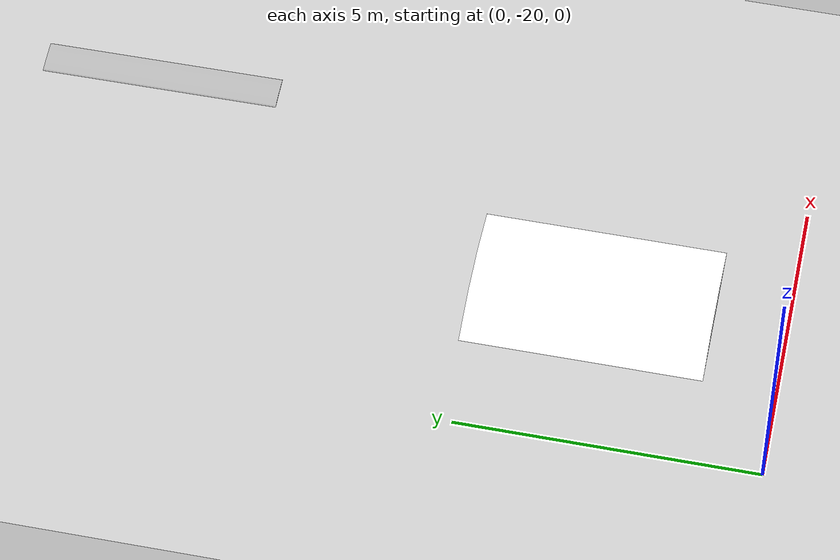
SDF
<sdf version="1.9">
 <world name="empty">
  <model name="ground_plane">
   <static>true</static>
   <link name="link">
    <collision name="collision">
     <geometry><plane><normal>0 0 1</normal><size>100 100</size></plane></geometry>
    </collision>
    <visual name="visual">
     <geometry><plane><normal>0 0 1</normal><size>100 100</size></plane></geometry>
     <material>
      <ambient>0.8 0.8 0.8 1</ambient>
      <diffuse>0.8 0.8 0.8 1</diffuse>
      <specular>0.8 0.8 0.8 1</specular>
     </material>
    </visual>
    <inertial>
     <mass>1</mass>
     <inertia><ixx>1</ixx><ixy>0</ixy><ixz>0</ixz><iyy>1</iyy><iyz>0</iyz><izz>1</izz></inertia>
    </inertial>
   </link>
  </model>
  <model name="speed_bump_1_short">
   <static>true</static>
   <link name="link">
    <collision name="collision">
     <geometry><mesh><uri>models/speed_bump_1_short//bump_2_060.dae</uri></mesh></geometry>
     <surface><friction><ode><mu>0.90000000000000002</mu><mu2>0.59999999999999998</mu2></ode></friction></surface>
    </collision>
    <visual name="visual">
     <geometry><mesh><uri>models/speed_bump_1_short//bump_2_060.dae</uri></mesh></geometry>
    </visual>
    <inertial>
     <mass>1</mass>
     <inertia><ixx>1</ixx><ixy>0</ixy><ixz>0</ixz><iyy>1</iyy><iyz>0</iyz><izz>1</izz></inertia>
    </inertial>
   </link>
   <pose>6.01068 -10.93096 0.0 0.0 -0.0 1.57469</pose>
  </model>
  <model name="ramp_2">
   <static>true</static>
   <link name="link">
    <collision name="collision">
     <geometry><mesh><uri>models/ramp_2//ramp_020.dae</uri></mesh></geometry>
     <surface><friction><ode><mu>0.90000000000000002</mu><mu2>0.59999999999999998</mu2></ode></friction></surface>
    </collision>
    <visual name="visual"><geometry><mesh><uri>models/ramp_2//ramp_020.dae</uri></mesh></geometry></visual>
    <inertial>
     <mass>1</mass>
     <inertia><ixx>1</ixx><ixy>0</ixy><ixz>0</ixz><iyy>1</iyy><iyz>0</iyz><izz>1</izz></inertia>
    </inertial>
   </link>
   <pose>1.53805 -18.79726 0.0 0.0 -0.0 0.0</pose>
  </model>
 </world>
</sdf>
